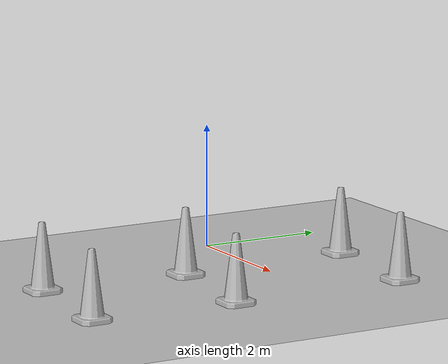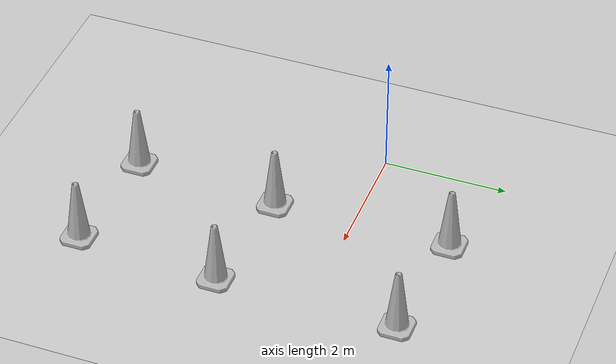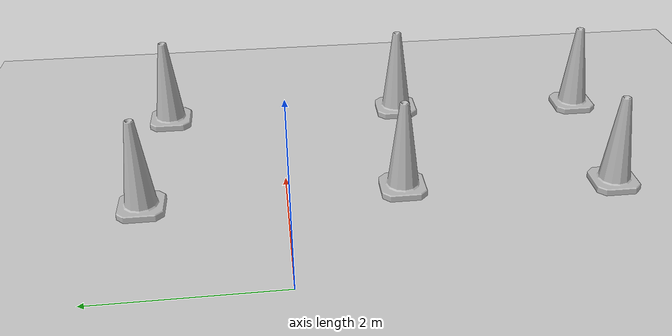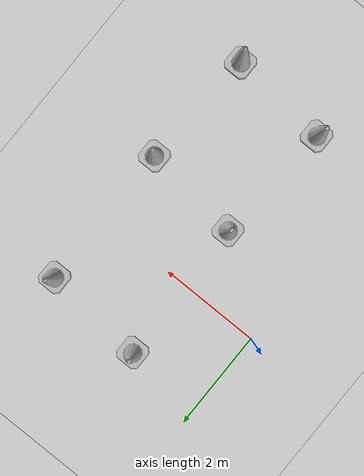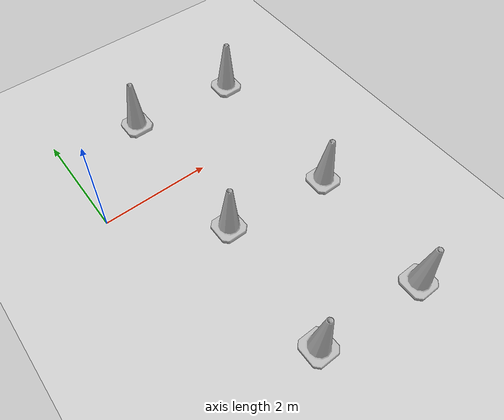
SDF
<sdf version="1.7">
 <world name="default">
  <light name="sun" type="directional">
   <pose>0 0 10 0 -0 0</pose>
   <diffuse>0.8 0.8 0.8 1</diffuse>
   <specular>0.2 0.2 0.2 1</specular>
   <attenuation>
    <range>1000</range>
    <constant>0.9</constant>
    <linear>0.01</linear>
    <quadratic>0.001</quadratic>
   </attenuation>
   <direction>-0.5 0.1 -0.9</direction>
   <spot><inner_angle>0</inner_angle><outer_angle>0</outer_angle><falloff>0</falloff></spot>
  </light>
  <model name="ground_plane">
   <static>1</static>
   <link name="link">
    <collision name="collision">
     <geometry><plane><normal>0 0 1</normal><size>100 100</size></plane></geometry>
     <surface>
      <contact><collide_bitmask>65535</collide_bitmask></contact>
      <friction><ode><mu>100</mu><mu2>50</mu2></ode></friction>
     </surface>
    </collision>
    <visual name="visual">
     <cast_shadows>0</cast_shadows>
     <geometry><plane><normal>0 0 1</normal><size>100 100</size></plane></geometry>
     <material>
      <script><uri>file://media/materials/scripts/gazebo.material</uri><name>Gazebo/Grey</name></script>
     </material>
    </visual>
   </link>
  </model>
  <gravity>0 0 -9.8</gravity>
  <magnetic_field>6e-06 2.3e-05 -4.2e-05</magnetic_field>
  <atmosphere type="adiabatic"/>
  <physics type="ode">
   <max_step_size>0.001</max_step_size>
   <real_time_factor>1</real_time_factor>
   <real_time_update_rate>1000</real_time_update_rate>
  </physics>
  <scene><ambient>0.4 0.4 0.4 1</ambient><background>0.7 0.7 0.7 1</background><shadows>1</shadows></scene>
  <audio><device>default</device></audio>
  <spherical_coordinates>
   <surface_model>EARTH_WGS84</surface_model>
   <latitude_deg>0</latitude_deg>
   <longitude_deg>0</longitude_deg>
   <elevation>0</elevation>
   <heading_deg>0</heading_deg>
  </spherical_coordinates>
  <light name="sun" type="directional">
   <pose>-60.5377 25.9152 10 0 -0 0</pose>
   <diffuse>0.8 0.8 0.8 1</diffuse>
   <specular>0.2 0.2 0.2 1</specular>
   <attenuation>
    <range>1000</range>
    <constant>0.9</constant>
    <linear>0.01</linear>
    <quadratic>0.001</quadratic>
   </attenuation>
   <direction>-0.5 0.1 -0.9</direction>
  </light>
  <model name="Construction Cone">
   <link name="link">
    <collision name="collision">
     <geometry>
      <mesh><scale>10 10 10</scale><uri>model://construction_cone/meshes/construction_cone.dae</uri></mesh>
     </geometry>
    </collision>
    <visual name="visual">
     <geometry>
      <mesh><scale>10 10 10</scale><uri>model://construction_cone/meshes/construction_cone.dae</uri></mesh>
     </geometry>
    </visual>
    <inertial>
     <inertia><ixx>1</ixx><ixy>0</ixy><ixz>0</ixz><iyy>1</iyy><iyz>0</iyz><izz>1</izz></inertia>
     <mass>1</mass>
    </inertial>
   </link>
   <pose>3.38193 -3.85839 0 0 -0 0</pose>
  </model>
  <model name="Construction Cone_0">
   <link name="link">
    <collision name="collision">
     <geometry>
      <mesh><scale>10 10 10</scale><uri>model://construction_cone/meshes/construction_cone.dae</uri></mesh>
     </geometry>
    </collision>
    <visual name="visual">
     <geometry>
      <mesh><scale>10 10 10</scale><uri>model://construction_cone/meshes/construction_cone.dae</uri></mesh>
     </geometry>
    </visual>
    <inertial>
     <inertia><ixx>1</ixx><ixy>0</ixy><ixz>0</ixz><iyy>1</iyy><iyz>0</iyz><izz>1</izz></inertia>
     <mass>1</mass>
    </inertial>
   </link>
   <pose>3.53601 -1.51139 0 0 -0 0</pose>
  </model>
  <model name="Construction Cone_0_clone">
   <link name="link">
    <collision name="collision">
     <geometry>
      <mesh><scale>10 10 10</scale><uri>model://construction_cone/meshes/construction_cone.dae</uri></mesh>
     </geometry>
    </collision>
    <visual name="visual">
     <geometry>
      <mesh><scale>10 10 10</scale><uri>model://construction_cone/meshes/construction_cone.dae</uri></mesh>
     </geometry>
    </visual>
    <inertial>
     <inertia><ixx>1</ixx><ixy>0</ixy><ixz>0</ixz><iyy>1</iyy><iyz>0</iyz><izz>1</izz></inertia>
     <mass>1</mass>
    </inertial>
   </link>
   <pose>3.55664 1.39969 0 0 -0 0</pose>
  </model>
  <model name="Construction Cone_0_clone_0">
   <link name="link">
    <collision name="collision">
     <geometry>
      <mesh><scale>10 10 10</scale><uri>model://construction_cone/meshes/construction_cone.dae</uri></mesh>
     </geometry>
    </collision>
    <visual name="visual">
     <geometry>
      <mesh><scale>10 10 10</scale><uri>model://construction_cone/meshes/construction_cone.dae</uri></mesh>
     </geometry>
    </visual>
    <inertial>
     <inertia><ixx>1</ixx><ixy>0</ixy><ixz>0</ixz><iyy>1</iyy><iyz>0</iyz><izz>1</izz></inertia>
     <mass>1</mass>
    </inertial>
   </link>
   <pose>1.4326 -3.68964 0 0 -0 0</pose>
  </model>
  <model name="Construction Cone_0_clone_1">
   <link name="link">
    <collision name="collision">
     <geometry>
      <mesh><scale>10 10 10</scale><uri>model://construction_cone/meshes/construction_cone.dae</uri></mesh>
     </geometry>
    </collision>
    <visual name="visual">
     <geometry>
      <mesh><scale>10 10 10</scale><uri>model://construction_cone/meshes/construction_cone.dae</uri></mesh>
     </geometry>
    </visual>
    <inertial>
     <inertia><ixx>1</ixx><ixy>0</ixy><ixz>0</ixz><iyy>1</iyy><iyz>0</iyz><izz>1</izz></inertia>
     <mass>1</mass>
    </inertial>
   </link>
   <pose>1.60729 -1.29434 0 0 -0 0</pose>
  </model>
  <model name="Construction Cone_0_clone_2">
   <link name="link">
    <collision name="collision">
     <geometry>
      <mesh><scale>10 10 10</scale><uri>model://construction_cone/meshes/construction_cone.dae</uri></mesh>
     </geometry>
    </collision>
    <visual name="visual">
     <geometry>
      <mesh><scale>10 10 10</scale><uri>model://construction_cone/meshes/construction_cone.dae</uri></mesh>
     </geometry>
    </visual>
    <inertial>
     <inertia><ixx>1</ixx><ixy>0</ixy><ixz>0</ixz><iyy>1</iyy><iyz>0</iyz><izz>1</izz></inertia>
     <mass>1</mass>
    </inertial>
   </link>
   <pose>1.55457 1.57097 0 0 -0 0</pose>
  </model>
 </world>
</sdf>
